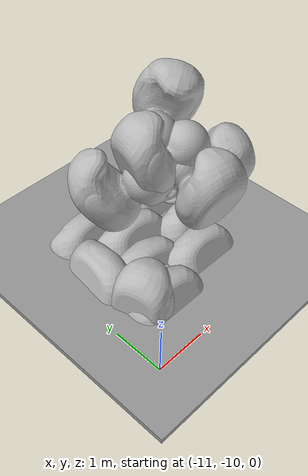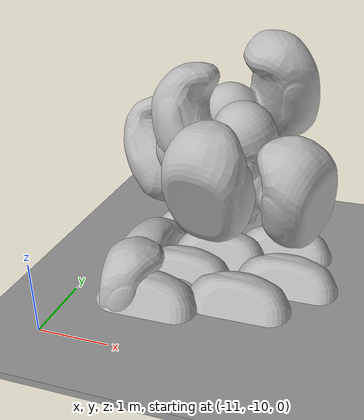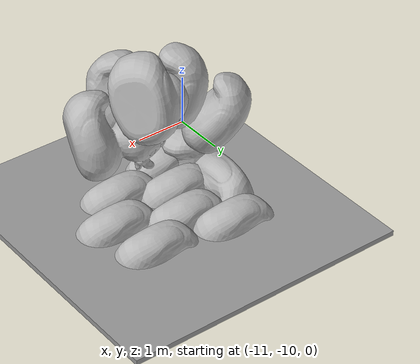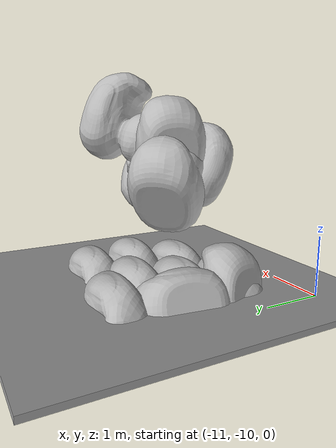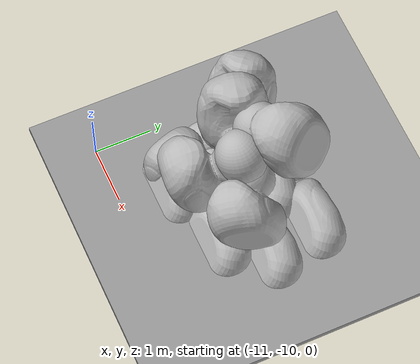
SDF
<sdf version="1.6">
 <world name="default">
  <light name="sun" type="directional">
   <pose>0 0 10 0 -0 0</pose>
   <diffuse>0.8 0.8 0.8 1</diffuse>
   <specular>0.2 0.2 0.2 1</specular>
   <attenuation>
    <range>1000</range>
    <constant>0.9</constant>
    <linear>0.01</linear>
    <quadratic>0.001</quadratic>
   </attenuation>
   <direction>-0.5 0.1 -0.9</direction>
   <spot><inner_angle>0</inner_angle><outer_angle>0</outer_angle><falloff>0</falloff></spot>
  </light>
  <model name="ground_plane">
   <static>1</static>
   <link name="link">
    <collision name="collision">
     <geometry><plane><normal>0 0 1</normal><size>100 100</size></plane></geometry>
     <surface>
      <contact><collide_bitmask>65535</collide_bitmask></contact>
      <friction><ode><mu>100</mu><mu2>50</mu2></ode></friction>
     </surface>
    </collision>
    <visual name="visual">
     <cast_shadows>0</cast_shadows>
     <geometry><plane><normal>0 0 1</normal><size>100 100</size></plane></geometry>
     <material>
      <script><uri>file://media/materials/scripts/gazebo.material</uri><name>Gazebo/Grey</name></script>
     </material>
    </visual>
   </link>
  </model>
  <gravity>0 0 -9.8</gravity>
  <magnetic_field>6e-06 2.3e-05 -4.2e-05</magnetic_field>
  <atmosphere type="adiabatic"/>
  <physics name="default_physics" default="0" type="ode">
   <max_step_size>0.001</max_step_size>
   <real_time_factor>1</real_time_factor>
   <real_time_update_rate>1000</real_time_update_rate>
  </physics>
  <scene><ambient>0.4 0.4 0.4 1</ambient><background>0.7 0.7 0.7 1</background><shadows>1</shadows></scene>
  <spherical_coordinates>
   <surface_model>EARTH_WGS84</surface_model>
   <latitude_deg>0</latitude_deg>
   <longitude_deg>0</longitude_deg>
   <elevation>0</elevation>
   <heading_deg>0</heading_deg>
  </spherical_coordinates>
  <model name="ground_plane_0">
   <static>1</static>
   <link name="link">
    <collision name="collision">
     <geometry><plane><normal>0 0 1</normal><size>100 100</size></plane></geometry>
     <surface>
      <contact><collide_bitmask>65535</collide_bitmask></contact>
      <friction><ode><mu>100</mu><mu2>50</mu2></ode></friction>
     </surface>
    </collision>
    <visual name="visual">
     <cast_shadows>0</cast_shadows>
     <geometry><plane><normal>0 0 1</normal><size>100 100</size></plane></geometry>
     <material>
      <script><uri>file://media/materials/scripts/gazebo.material</uri><name>Gazebo/Grey</name></script>
     </material>
    </visual>
   </link>
   <pose>9.12511 28.9192 0 0 -0 0</pose>
  </model>
  <model name="fireduck_clone_0">
   <link name="body">
    <visual name="visual">
     <geometry><mesh><uri>model://fireduck/meshes/FireTest.dae</uri></mesh></geometry>
     <material><shader type="pixel"/></material>
    </visual>
   </link>
   <static>1</static>
   <pose>-9.90261 -7.39645 0.180387 -0.514862 0 0</pose>
  </model>
  <model name="fireduck_clone_2">
   <link name="body">
    <visual name="visual">
     <geometry><mesh><uri>model://fireduck/meshes/FireTest.dae</uri></mesh></geometry>
     <material><shader type="pixel"/></material>
    </visual>
   </link>
   <static>1</static>
   <pose>-8.37671 -7.60114 0.180387 -0.514862 0 0</pose>
  </model>
  <model name="fireduck_clone_3">
   <link name="body">
    <visual name="visual">
     <geometry><mesh><uri>model://fireduck/meshes/FireTest.dae</uri></mesh></geometry>
     <material><shader type="pixel"/></material>
    </visual>
   </link>
   <static>1</static>
   <pose>-8.1768 -8.48675 0.180387 -0.514862 0 0</pose>
  </model>
  <model name="fireduck_clone_4">
   <link name="body">
    <visual name="visual">
     <geometry><mesh><uri>model://fireduck/meshes/FireTest.dae</uri></mesh></geometry>
     <material><shader type="pixel"/></material>
    </visual>
   </link>
   <static>1</static>
   <pose>-9.32949 -8.00815 0.180387 -0.514862 0 0</pose>
  </model>
  <model name="fireduck_clone_5">
   <link name="body">
    <visual name="visual">
     <geometry><mesh><uri>model://fireduck/meshes/FireTest.dae</uri></mesh></geometry>
     <material><shader type="pixel"/></material>
    </visual>
   </link>
   <static>1</static>
   <pose>-9.67675 -8.71446 0.180387 -0.514862 0 0</pose>
  </model>
  <model name="fireduck_clone_6">
   <link name="body">
    <visual name="visual">
     <geometry><mesh><uri>model://fireduck/meshes/FireTest.dae</uri></mesh></geometry>
     <material><shader type="pixel"/></material>
    </visual>
   </link>
   <static>1</static>
   <pose>-8.72403 -9.16037 0.180387 -0.514862 0 0</pose>
  </model>
  <model name="fireduck_clone_7">
   <link name="body">
    <visual name="visual">
     <geometry><mesh><uri>model://fireduck/meshes/FireTest.dae</uri></mesh></geometry>
     <material><shader type="pixel"/></material>
    </visual>
   </link>
   <static>1</static>
   <pose>-9.95038 -9.4777 0.180387 -0.514862 0 0</pose>
  </model>
  <model name="fireduck_clone_0_clone">
   <link name="body">
    <visual name="visual">
     <geometry><mesh><uri>model://fireduck/meshes/FireTest.dae</uri></mesh></geometry>
     <material><shader type="pixel"/></material>
    </visual>
   </link>
   <static>1</static>
   <pose>-10.744 -7.74937 0.180387 -0.291041 -0.028034 -1.67575</pose>
  </model>
  <model name="fireduck_clone_0_clone_0">
   <link name="body">
    <visual name="visual">
     <geometry><mesh><uri>model://fireduck/meshes/FireTest.dae</uri></mesh></geometry>
     <material><shader type="pixel"/></material>
    </visual>
   </link>
   <static>1</static>
   <pose>-10.6508 -9.02052 0.180387 -1.75173 1.47308 -3.03012</pose>
  </model>
  <model name="fireduck_clone_0_clone_1">
   <link name="body">
    <visual name="visual">
     <geometry><mesh><uri>model://fireduck/meshes/FireTest.dae</uri></mesh></geometry>
     <material><shader type="pixel"/></material>
    </visual>
   </link>
   <static>1</static>
   <pose>-8.96913 -9.56206 1.8783 1.7065 1.21344 1.55457</pose>
  </model>
  <model name="fireduck_clone_0_clone_1_clone">
   <link name="body">
    <visual name="visual">
     <geometry><mesh><uri>model://fireduck/meshes/FireTest.dae</uri></mesh></geometry>
     <material><shader type="pixel"/></material>
    </visual>
   </link>
   <static>1</static>
   <pose>-9.92813 -8.04561 2.37304 1.28355 1.30611 -0.532592</pose>
  </model>
  <model name="fireduck_clone_0_clone_1_clone_0">
   <link name="body">
    <visual name="visual">
     <geometry><mesh><uri>model://fireduck/meshes/FireTest.dae</uri></mesh></geometry>
     <material><shader type="pixel"/></material>
    </visual>
   </link>
   <static>1</static>
   <pose>-7.50963 -8.72732 1.76146 0.396149 1.12135 1.5824</pose>
  </model>
  <model name="fireduck_clone_0_clone_1_clone_0_clone">
   <link name="body">
    <visual name="visual">
     <geometry><mesh><uri>model://fireduck/meshes/FireTest.dae</uri></mesh></geometry>
     <material><shader type="pixel"/></material>
    </visual>
   </link>
   <static>1</static>
   <pose>-8.01595 -7.37269 3.06211 -0.58759 1.12135 1.5824</pose>
  </model>
  <model name="fireduck_clone_0_clone_1_clone_clone">
   <link name="body">
    <visual name="visual">
     <geometry><mesh><uri>model://fireduck/meshes/FireTest.dae</uri></mesh></geometry>
     <material><shader type="pixel"/></material>
    </visual>
   </link>
   <static>1</static>
   <pose>-10.3733 -7.4718 1.59946 1.58865 0.939514 -0.739503</pose>
  </model>
 </world>
</sdf>
